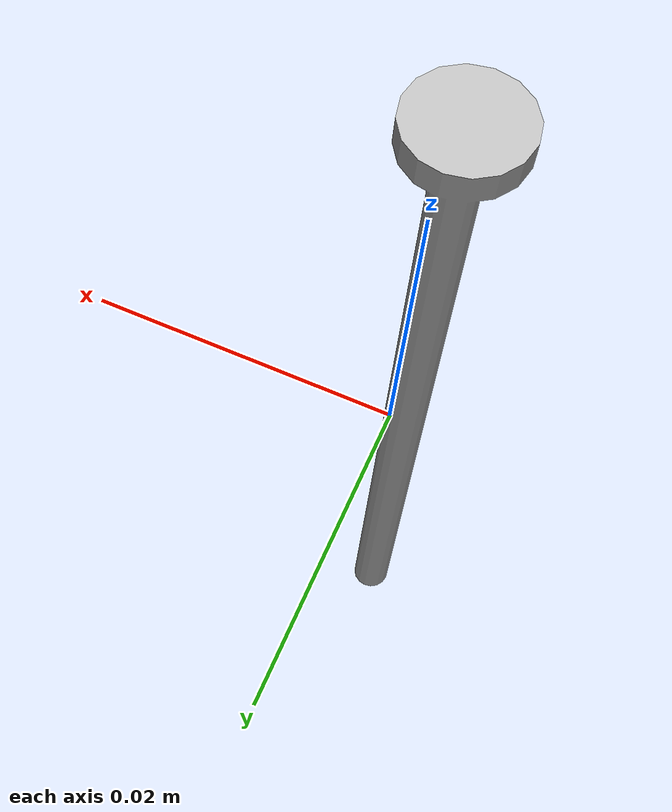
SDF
<?xml version="1.0"?>
<sdf version="1.8">
  <model name="nail">
    <link name="nail">
      <visual name="nail_visual">
        <geometry>
          <mesh>
            <uri>package://finger_description/meshes/nail.obj</uri>
          </mesh>
        </geometry>
      </visual>

      <collision name="nail_collision">
        <pose>0 0 0 0 0 0</pose>
        <geometry>
          <mesh>
            <uri>package://finger_description/meshes/nail.obj</uri>
          </mesh>
        </geometry>
      </collision>
    </link>
  </model>
</sdf>
